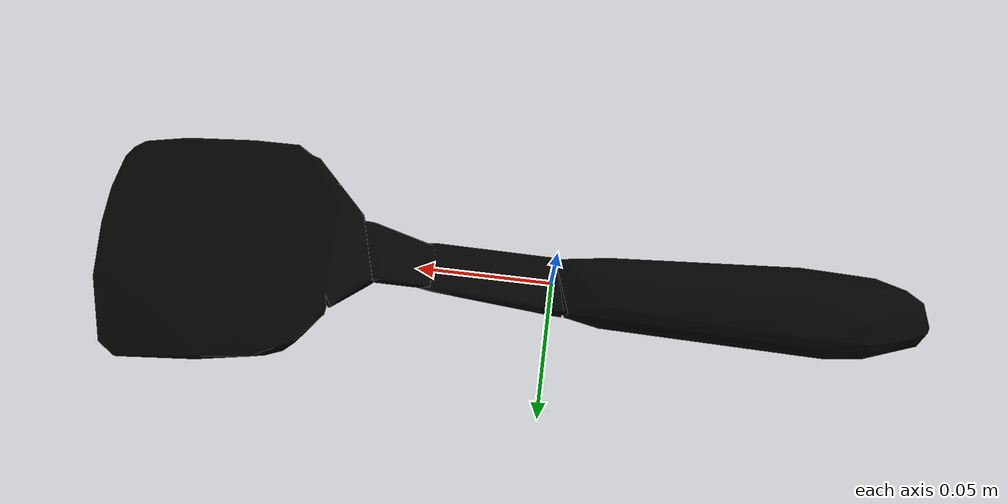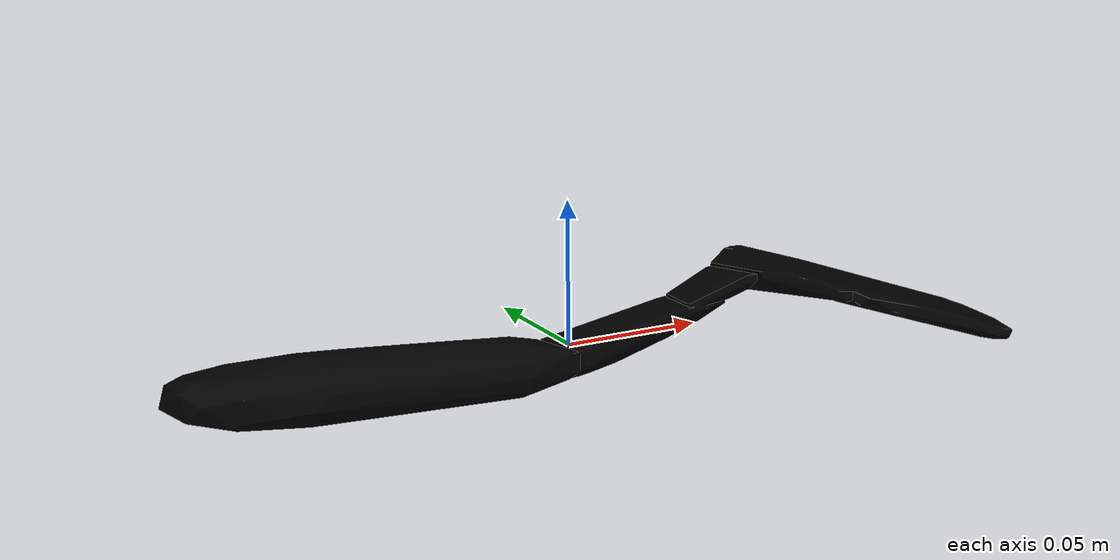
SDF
<?xml version="1.0"?>
<sdf version="1.4">
  <model name="033_spatula_textured">
    <pose>0 0 0  0 0 0</pose>
    <link name="body">
      <inertial>
        <mass> 1.0 </mass>
        <pose>0 0 0 0 0 0</pose>
        <inertia>
          <ixx>0.0002240093871456265</ixx>
          <ixy>0.0</ixy>
          <ixz>0.0</ixz>
          <iyy>0.009517276879188259</iyy>
          <iyz>0.0</iyz>
          <izz>0.009651659295726119</izz>
        </inertia>
      </inertial>
      <visual name="visual">
        <geometry>
          <mesh>
            <uri>model://033_spatula_textured/textured.dae</uri>
          </mesh>
        </geometry>
        <pose>0.024316932692646134 0.08810298737868008 -0.013006593722199304 0.0034120834510874454 0.0018417418082924083 0.26518340804163215</pose>
      </visual>
      <collision name="collision">
        <geometry>
          <mesh>
            <uri>model://033_spatula_textured/textured.col.dae</uri>
          </mesh>
        </geometry>
        <max_contacts>10</max_contacts>
        <surface>
          <friction>
            <ode>
              <mu>0.8</mu>
              <mu2>0.8</mu2>
              <slip1>0</slip1>
              <slip2>0</slip2>
            </ode>
            <torsional>
              <ode/>
            </torsional>
          </friction>
          <contact>
            <ode>
              <kp>1000000.0</kp>
              <kd>1.0</kd>
              <max_vel>0.0</max_vel>
            </ode>
          </contact>
        </surface>
        <pose>0.024316932692646134 0.08810298737868008 -0.013006593722199304 0.0034120834510874454 0.0018417418082924083 0.26518340804163215</pose>
      </collision>
    </link>
  </model>
</sdf>
